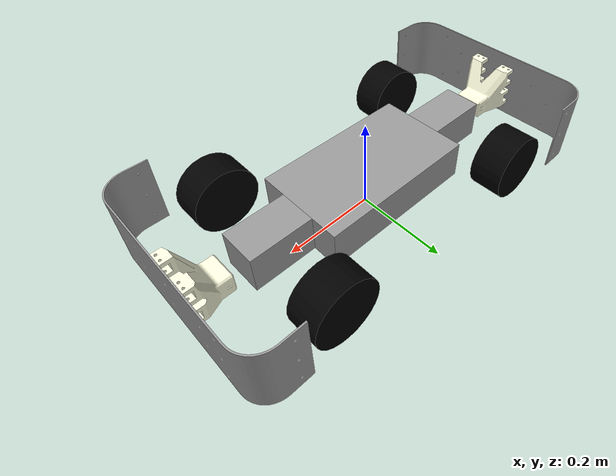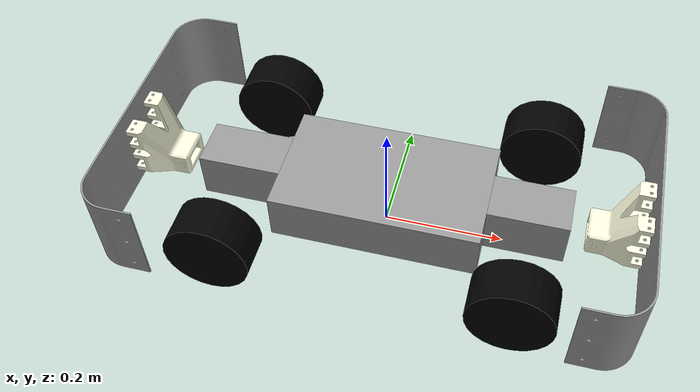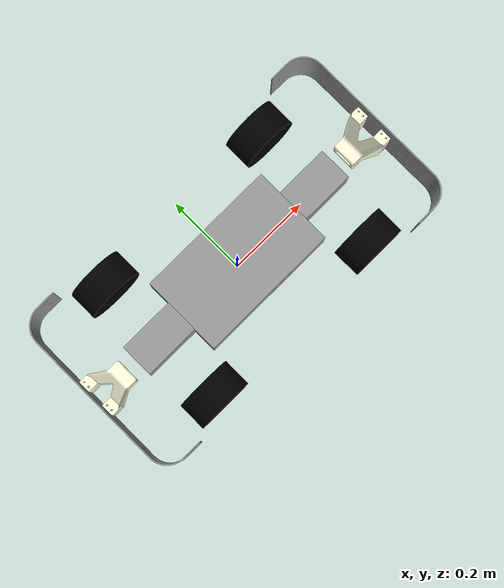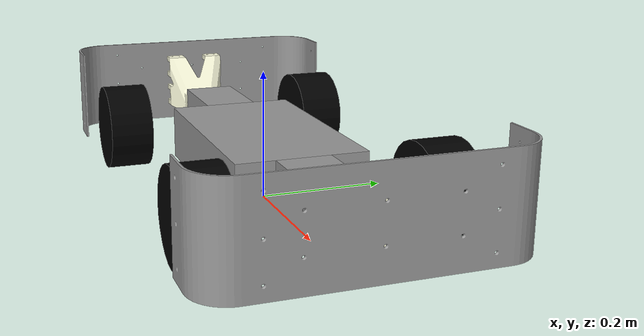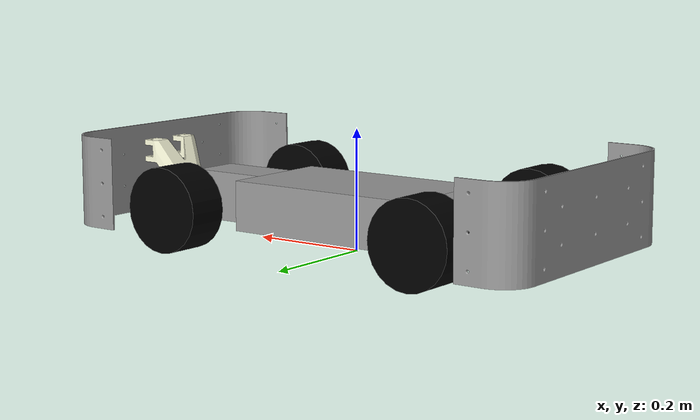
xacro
<robot xmlns:xacro="http://wiki.ros.org/xacro">
    <!-- PI 值 -->
    <xacro:property name="PI" value="3.1416"/>
    <!-- 定义参数 -->
    <!-- 中心车体长宽高 -->
    <xacro:property name="base_central_height" value="0.083"/>
    <xacro:property name="base_central_length" value="0.345"/>
    <xacro:property name="base_central_width" value="0.2"/>
    <!-- 前车体长宽高 -->
    <xacro:property name="base_front_height" value="0.083"/>
    <xacro:property name="base_front_length" value="0.1325"/>
    <xacro:property name="base_front_width" value="0.0825"/>
    <!-- 后车体长宽高 -->
    <xacro:property name="base_back_height" value="0.083"/>
    <xacro:property name="base_back_length" value="0.1385"/>
    <xacro:property name="base_back_width" value="0.0825"/>
    <!-- 离地间距 -->
    <xacro:property name="base_to_plane" value="0.029"/>
    <!-- 车轮半径 宽度 到车体长度-->
    <xacro:property name="wheel_radius" value="0.070"/>
    <xacro:property name="wheel_length" value="0.070"/>
    <xacro:property name="wheel_to_base" value="0.095"/>
    <!--板到车体长度 前后 厚 左右 上下-->
    <xacro:property name="ban_to_base" value="0.123"/>
    <xacro:property name="ban_width" value="0.100"/>
    <xacro:property name="joint_move_right" value="0.225"/>
    <xacro:property name="joint_move_down" value="0.0022"/>
    <!--支撑件到车体长度 前后 左右 上下-->
    <xacro:property name="supporter_z" value="0.02"/>
    <xacro:property name="joint_to_base" value="0.118"/>
    <xacro:property name="joint_to_center" value="0.05"/>
    <xacro:property name="joint_to_top" value="0.020"/>
    <xacro:property name="joint_to_bottom" value="0.023"/>
    <!-- 定义颜色 -->
    <material name="gray">
        <color rgba="0.6 0.6 0.6 1" />
      </material>
    <material name="black">
        <color rgba="0.0 0.0 0.0 1" />
    </material>
    <material name="yellow">
        <color rgba="1.0 1.0 0.878 1" />
    </material>
    <!-- 定义 base_footprint -->
    <link name="base_footprint">
        <visual>
            <geometry>
                <sphere radius="0.001"/>
            </geometry>
        </visual>
    </link>

    <!-- 定义 base_link -->
    <link name="base_link">
        <visual>
            <!-- 形状 -->
            <geometry>
                <box size="${base_central_length} ${base_central_width} ${base_central_height}" />
            </geometry>
            <origin xyz="0 0 0" rpy="0 0 0" />
            <material name="gray"/>
        </visual>
    </link>
    <joint name="baselink2basefootprint" type="fixed">
        <parent link="base_footprint"/>1/2
        <child link="base_link"/>
        <origin xyz="0.0 0.0 ${base_to_plane + base_central_height / 2}"/>
    </joint>
    <!-- 定义 base_front_link -->
    <link name="base_front_link">
        <visual>
            <!-- 形状 -->
            <geometry>
                <box size="${base_front_length} ${base_front_width} ${base_front_height}" />
            </geometry>
            <origin xyz="0 0 0" rpy="0 0 0" />
            <material name="gray"/>
        </visual>
    </link>
    <joint name="basefrontlink2basecentrallink" type="fixed">
        <parent link="base_link"/>
        <child link="base_front_link"/>
        <origin xyz="${base_central_length / 2 + base_front_length / 2} 0.0 0.0"/>
    </joint>
    <!-- 定义 base_back_link -->
    <link name="base_back_link">base_front_height/2}"/>
        <visual>
            <!-- 形状 -->
            <geometry>
                <box size="${base_back_length} ${base_back_width} ${base_back_height}" />
            </geometry>
            <origin xyz="0 0 0" rpy="0 0 0" />
            <material name="gray"/>
        </visual>
    </link>
    <joint name="basebacklink2basecentrallink" type="fixed">
        <parent link="base_link"/>
        <child link="base_back_link"/>
        <origin xyz="-${base_central_length / 2 + base_back_length / 2} 0.0 0.0"/>
    </joint>
    <!-- 定义 front_ban_link -->
    <link name="front_ban_link">
        <visual>
            <!-- 形状 -->
            <geometry>
                <mesh filename="package://car_urdf/meshes/ban.stl" scale="0.001 0.001 0.001"/>
            </geometry>
            <origin xyz="0 0 0" rpy="${PI / 2} 0 ${PI / 2}" />
            <material name="gray"/>
        </visual>
    </link>
    <joint name="frontbanlink2basefrontlink" type="fixed">
        <parent link="base_front_link"/>
        <child link="front_ban_link"/>
        <origin xyz="${ban_to_base-ban_width+base_front_length/2} -${joint_move_right} -${base_front_height/2-joint_move_down}"/>
    </joint>
    <!-- 定义 back_ban_link -->
    <link name="back_ban_link">
        <visual>
            <!-- 形状 -->
            <geometry>
                <mesh filename="package://car_urdf/meshes/ban.stl" scale="0.001 0.001 0.001"/>
            </geometry>
            <origin xyz="0 0 0" rpy="${PI / 2} 0 -${PI / 2}" />
            <material name="gray"/>
        </visual>
    </link>
    <joint name="backbanlink2basebacklink" type="fixed">
        <parent link="base_back_link"/>
        <child link="back_ban_link"/>
        <origin xyz="-${ban_to_base-ban_width+base_back_length/2} ${joint_move_right} -${base_front_height/2-joint_move_down}"/>
    </joint>
    <!-- 定义 supporter_link  前=1 -->
    <xacro:macro name="supporter_link_func" params="supporter_name  is_front ">
    <link name="${supporter_name}_supporter_link">
        <visual>
            <!-- 形状 -->
            <geometry>
                <mesh filename="package://car_urdf/meshes/new_supporter.stl" scale="0.001 0.001 0.001"/>
            </geometry>
            <origin xyz="0 0 0" rpy="${PI / 2} 0 ${-(PI / 2)*(is_front / 2 - 1 / 2)-(PI / 2)*(is_front / 2 + 1 / 2)}" />
            <material name="yellow"/>
        </visual>
    </link>
    <joint name="${supporter_name}supporterlink2base${supporter_name}link" type="fixed">
        <parent link="base_${supporter_name}_link"/>
        <child link="${supporter_name}_supporter_link"/>
        <origin xyz="${(base_front_length/2)*(is_front/2+1/2)+(base_back_length/2)*(is_front/2-1/2)+joint_to_base*is_front} ${joint_to_center*is_front} ${joint_to_bottom-joint_to_top-supporter_z}"/>
    </joint>
    </xacro:macro>
    <xacro:supporter_link_func supporter_name="front" is_front="1" />
    <xacro:supporter_link_func supporter_name="back" is_front="-1" />
    <!-- 车轮前转轴宏定义 -->
    <xacro:macro name="wheel_bar_func" params="bar_name is_left" >
        <link name="${bar_name}_bar">
            <visual>
                <geometry>
                    <sphere radius="0.01"/>
                </geometry>
                <origin xyz="0 0 0" rpy="0 0 0" />
                <material name="black"/>
            </visual>
        </link>
        <joint name="${bar_name}2basefrontlink" type="continuous">
            <parent link="base_front_link"  />
            <child link="${bar_name}_bar" />
            <origin xyz="0.0 ${(base_front_width/2+wheel_length/2+wheel_to_base)*is_left} 0.0" rpy="0 0 0" />
            <axis xyz="0 0 1" />
        </joint>
    </xacro:macro>
    <xacro:wheel_bar_func bar_name="left" is_left="-1" />
    <xacro:wheel_bar_func bar_name="right" is_left="1" />
    <!-- 后车轮宏定义 -->
    <xacro:macro name="wheel_back_func" params="wheel_name  is_left" >
        <link name="${wheel_name}_back_wheel">
            <visual>
                <geometry>
                    <cylinder radius="${wheel_radius}" length="${wheel_length}" />
                </geometry>
                <origin xyz="0 0 0" rpy="${PI / 2} 0 0" />
                <material name="black"/>
            </visual>
        </link>
        <joint name="${wheel_name}back2basebacklink" type="continuous">
            <parent link="base_back_link"  />
            <child link="${wheel_name}_back_wheel" />
            <origin xyz="0 ${(base_front_width/2+wheel_length/2+wheel_to_base)*is_left} 0.0" rpy="0 0 0" />
            <axis xyz="0 1 0" />
        </joint>
    </xacro:macro>
    <!-- 车轮宏调用 -->
    <xacro:wheel_back_func wheel_name="right" is_left="1" />
    <xacro:wheel_back_func wheel_name="left" is_left="-1" />
    <!-- 前车轮宏定义 -->
    <xacro:macro name="wheel_front_func" params="wheel_name" >
        <link name="${wheel_name}_front_wheel">
            <visual>
                <geometry>
                    <cylinder radius="${wheel_radius}" length="${wheel_length}" />
                </geometry>
                <origin xyz="0 0 0" rpy="${PI / 2} 0 0" />
                <material name="black"/>
            </visual>
        </link>
        <joint name="${wheel_name}front2bar" type="continuous">
            <parent link="${wheel_name}_bar"  />
            <child link="${wheel_name}_front_wheel" />
            <origin xyz="0.0 0.0 0.0" rpy="0 0 0" />
            <axis xyz="0 1 0" />
        </joint>
    </xacro:macro>
    <!-- 车轮宏调用 -->
    <xacro:wheel_front_func wheel_name="right" />
    <xacro:wheel_front_func wheel_name="left"
     />
</robot>
